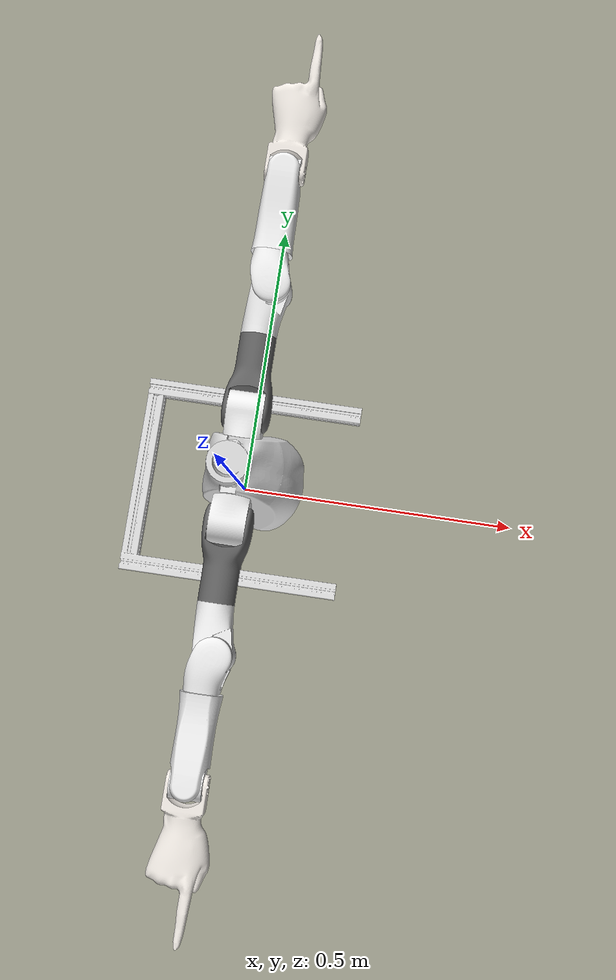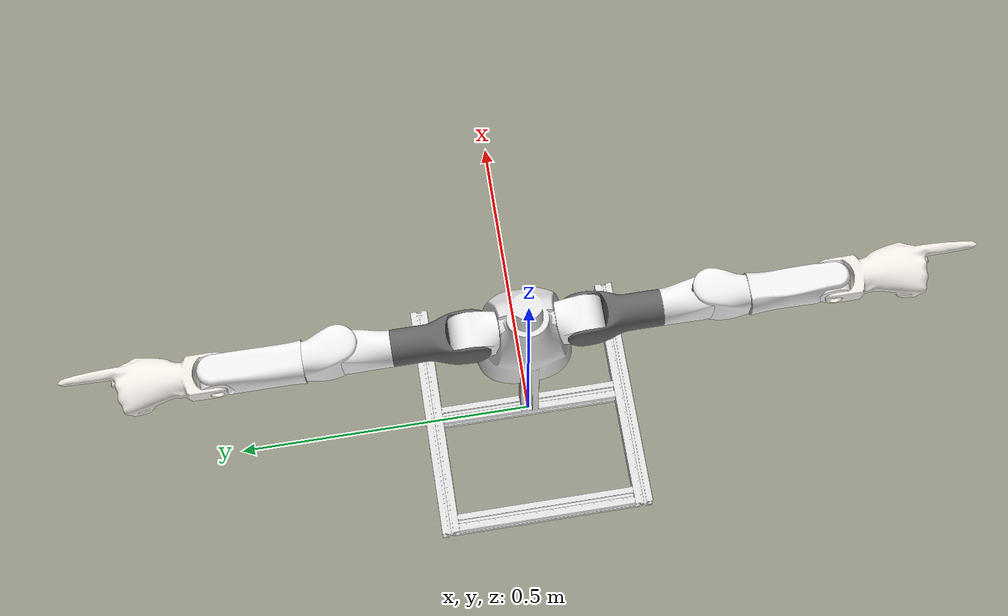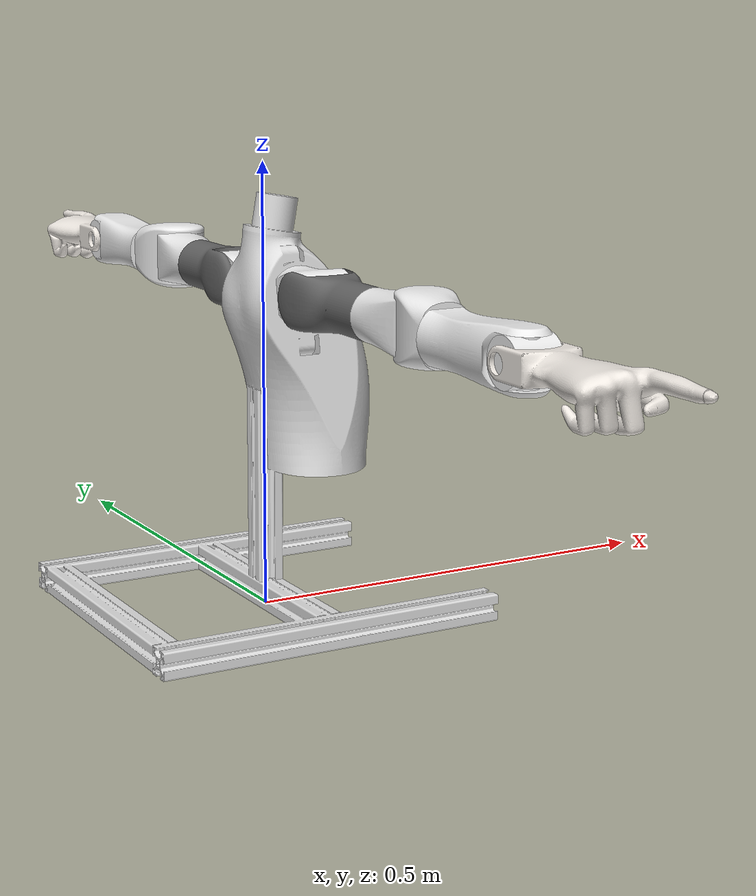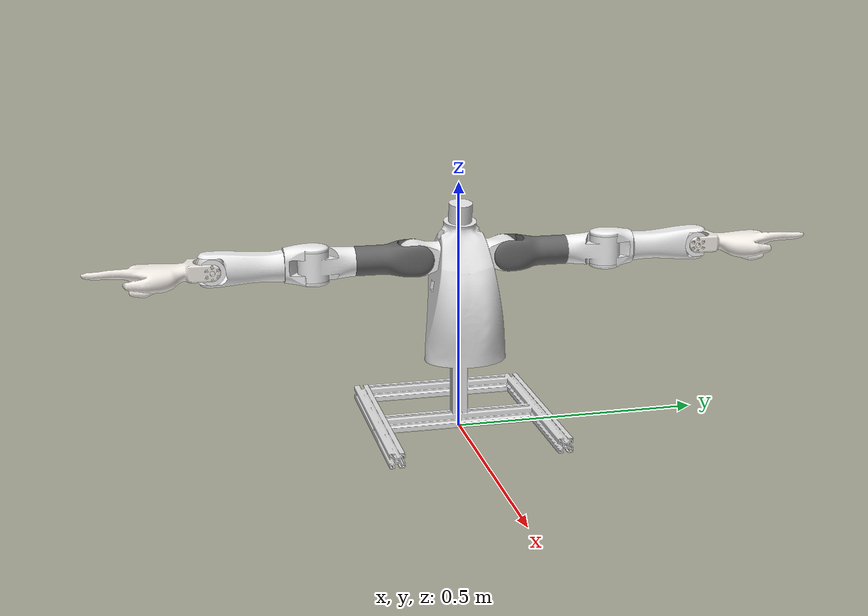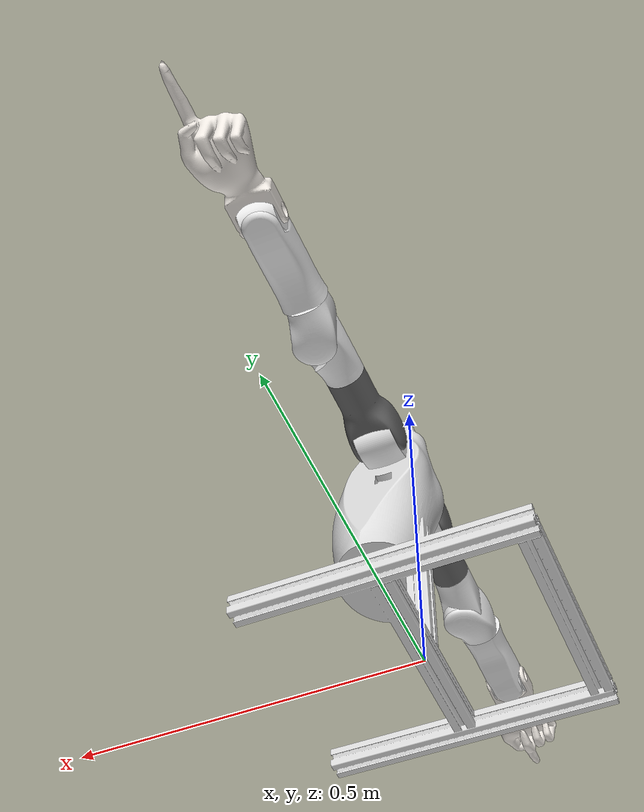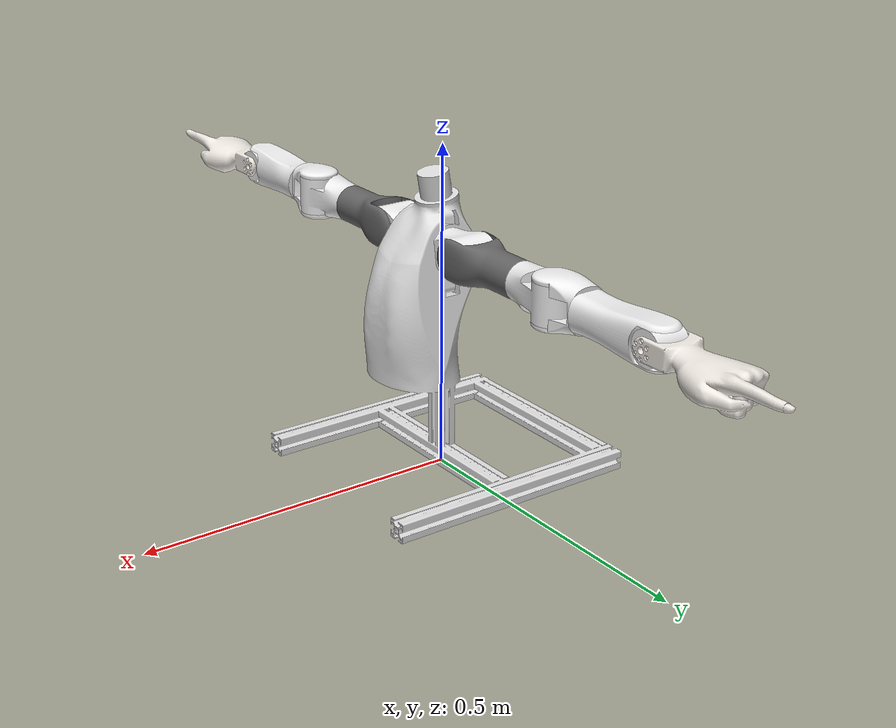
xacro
<?xml version="1.0"?>
<!-- GENERATED by robot_assets from Onshape CAD. Do not edit by hand. Regenerate: robot-assets-generate lite_bimanual -->
<robot xmlns:xacro="http://www.ros.org/wiki/xacro" name="lite_bimanual">
  <xacro:arg name="use_mock_hardware" default="true"/>
  <xacro:arg name="sim_mujoco" default="false"/>
  <xacro:arg name="can_interface_left" default="can0"/>
  <xacro:arg name="can_interface_right" default="can1"/>
  <xacro:arg name="calibration_file" default=""/>

  <xacro:include filename="$(find lite_description)/robots/lite_bimanual/xacro/lite_bimanual.description.xacro"/>
  <xacro:include filename="$(find lite_description)/robots/lite_bimanual/xacro/lite_bimanual.ros2_control.xacro"/>

  <xacro:lite_bimanual_description/>

  <xacro:lite_bimanual_ros2_control
    use_mock_hardware="$(arg use_mock_hardware)"
    sim_mujoco="$(arg sim_mujoco)"
    can_interface_left="$(arg can_interface_left)"
    can_interface_right="$(arg can_interface_right)"
    calibration_file="$(arg calibration_file)"/>
</robot>

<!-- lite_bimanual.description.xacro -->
<!-- GENERATED by lite_description.workflow from Onshape CAD. Do not edit by hand. Regenerate: lite-description-generate lite_bimanual -->
<robot xmlns:xacro="http://www.ros.org/wiki/xacro">
  <xacro:macro name="lite_bimanual_description" params="mesh_root:=package://lite_description/robots/lite_bimanual/meshes/visual">
    <link name="base_link" />
    <joint name="base_link_to_chest" type="fixed">
      <parent link="base_link" />
      <child link="chest" />
      <origin xyz="0 0 0" rpy="0 0 0" />
    </joint>
    <!-- GENERATED by lite_description.workflow from Onshape CAD. Do not edit by hand. Regenerate: lite-description-generate lite_bimanual -->
    <link name="chest">
      <inertial>
        <origin xyz="0.0223995 -9.473e-08 0.218844" rpy="0 0 0" />
        <mass value="5.67528" />
        <inertia ixx="0.11598" ixy="1.83421e-07" ixz="-0.0169371" iyy="0.116403" iyz="6.50745e-07" izz="0.0554604" />
      </inertial>
      <!-- Part chest_parts -->
      <collision>
        <origin xyz="0.04824 5e-05 0.23711" rpy="-0 0 -1.5708" />
        <geometry>
          <sphere radius="0.074" />
        </geometry>
      </collision>
      <collision>
        <origin xyz="0.02322 -3e-05 0.34833" rpy="-0 0 -1.5708" />
        <geometry>
          <sphere radius="0.058" />
        </geometry>
      </collision>
      <visual>
        <origin xyz="0.0223995 -9.473e-08 0.218844" rpy="0 -0 0" />
        <geometry>
          <mesh filename="${mesh_root}/chest_visual.stl" />
        </geometry>
        <material name="chest_parts_material">
          <color rgba="0.877556 0.877556 0.877556 1" />
        </material>
      </visual>
    </link>
    <!-- Link left_shoulder_pitch -->
    <link name="left_shoulder_pitch">
      <inertial>
        <origin xyz="-6.27e-10 -0.00168619 -0.00682299" rpy="0 0 0" />
        <mass value="0.375" />
        <inertia ixx="0.000232695" ixy="7e-12" ixz="2e-12" iyy="0.000233203" iyz="-1.40823e-05" izz="0.000199827" />
      </inertial>
      <!-- Part left_shoulder_pitch_parts -->
      <visual>
        <origin xyz="-6.27e-10 -0.00168619 -0.00682299" rpy="1.39626 0 -0" />
        <geometry>
          <mesh filename="${mesh_root}/left_shoulder_pitch_visual.stl" />
        </geometry>
        <material name="left_shoulder_pitch_parts_material">
          <color rgba="0.933333 0.933333 0.933333 1" />
        </material>
      </visual>
    </link>
    <!-- Link left_shoulder_roll -->
    <link name="left_shoulder_roll">
      <inertial>
        <origin xyz="1.04497e-07 0.0788914 2.17586e-07" rpy="0 0 0" />
        <mass value="0.42" />
        <inertia ixx="0.000535467" ixy="-2.373e-09" ixz="5.049e-09" iyy="0.000208176" iyz="7.18e-09" izz="0.00050471" />
      </inertial>
      <!-- Part left_shoulder_roll_parts -->
      <visual>
        <origin xyz="1.04497e-07 0.0788914 2.17586e-07" rpy="-0 -1.5708 0" />
        <geometry>
          <mesh filename="${mesh_root}/left_shoulder_roll_visual.stl" />
        </geometry>
        <material name="left_shoulder_roll_parts_material">
          <color rgba="0.392063 0.392063 0.392063 1" />
        </material>
      </visual>
    </link>
    <!-- Link left_shoulder_yaw -->
    <link name="left_shoulder_yaw">
      <inertial>
        <origin xyz="0.00503665 -3.0467e-08 -0.0550993" rpy="0 0 0" />
        <mass value="0.43" />
        <inertia ixx="0.000494513" ixy="-1.96e-10" ixz="4.80344e-05" iyy="0.000498656" iyz="9.95e-10" izz="0.000218184" />
      </inertial>
      <!-- Part left_shoulder_yaw_parts -->
      <collision>
        <origin xyz="0 0 0.01418" rpy="0 -0 -1.5708" />
        <geometry>
          <cylinder length="0.18835" radius="0.035" />
        </geometry>
      </collision>
      <visual>
        <origin xyz="0.00503665 -3.0467e-08 -0.0550993" rpy="-1.5708 -0 0" />
        <geometry>
          <mesh filename="${mesh_root}/left_shoulder_yaw_visual.stl" />
        </geometry>
        <material name="left_shoulder_yaw_parts_material">
          <color rgba="0.933333 0.933333 0.933333 1" />
        </material>
      </visual>
    </link>
    <!-- Link left_elbow_pitch -->
    <link name="left_elbow_pitch">
      <inertial>
        <origin xyz="-0.00956573 0.0258355 -2.69877e-07" rpy="0 0 0" />
        <mass value="0.11" />
        <inertia ixx="0.000116342" ixy="7.43616e-06" ixz="-4.1438e-08" iyy="9.70555e-05" iyz="-5.662e-09" izz="7.93924e-05" />
      </inertial>
      <!-- Part left_elbow_pitch_parts -->
      <collision>
        <origin xyz="-0.01 0.06984 -0" rpy="-1.5708 1.5708 0" />
        <geometry>
          <cylinder length="0.13969" radius="0.032" />
        </geometry>
      </collision>
      <visual>
        <origin xyz="-0.00956573 0.0258355 -2.69877e-07" rpy="-0 -0 -0" />
        <geometry>
          <mesh filename="${mesh_root}/left_elbow_pitch_visual.stl" />
        </geometry>
        <material name="left_elbow_pitch_parts_material">
          <color rgba="0.933333 0.933333 0.933333 1" />
        </material>
      </visual>
    </link>
    <!-- Link left_wrist_yaw -->
    <link name="left_wrist_yaw">
      <inertial>
        <origin xyz="2.43113e-07 -2.65973e-05 -0.0592502" rpy="0 0 0" />
        <mass value="0.54" />
        <inertia ixx="0.000850282" ixy="-2.7692e-08" ixz="-3.582e-09" iyy="0.000856128" iyz="-4.1861e-08" izz="0.000282296" />
      </inertial>
      <!-- Part left_wrist_yaw_parts -->
      <visual>
        <origin xyz="2.43113e-07 -2.65973e-05 -0.0592502" rpy="-1.5708 -0 0" />
        <geometry>
          <mesh filename="${mesh_root}/left_wrist_yaw_visual.stl" />
        </geometry>
        <material name="left_wrist_yaw_parts_material">
          <color rgba="0.933333 0.933333 0.933333 1" />
        </material>
      </visual>
    </link>
    <!-- Link left_wrist_roll -->
    <link name="left_wrist_roll">
      <inertial>
        <origin xyz="3.48e-10 1e-12 -2.12e-10" rpy="0 0 0" />
        <mass value="0.25" />
        <inertia ixx="7.92687e-05" ixy="0" ixz="0" iyy="9.19125e-05" iyz="-6.7e-11" izz="9.04076e-05" />
      </inertial>
      <!-- Part left_wrist_roll_parts -->
      <visual>
        <origin xyz="3.48e-10 1e-12 -2.12e-10" rpy="-0 0 0" />
        <geometry>
          <mesh filename="${mesh_root}/left_wrist_roll_visual.stl" />
        </geometry>
        <material name="left_wrist_roll_parts_material">
          <color rgba="0.933333 0.933333 0.933333 1" />
        </material>
      </visual>
    </link>
    <!-- Link left_hand -->
    <link name="left_hand">
      <inertial>
        <origin xyz="0.00440787 0.100718 0.00600969" rpy="0 0 0" />
        <mass value="0.16768" />
        <inertia ixx="0.000457345" ixy="-6.69006e-07" ixz="-6.4849e-07" iyy="9.85782e-05" iyz="-4.41088e-05" izz="0.000408419" />
      </inertial>
      <!-- Part left_hand_parts -->
      <collision>
        <origin xyz="0.00521 0.07591 0.00365" rpy="0 1.47585 1.55003" />
        <geometry>
          <cylinder length="0.10375" radius="0.035" />
        </geometry>
      </collision>
      <collision>
        <origin xyz="-0.00704 0.20041 0.02301" rpy="3.14159 1.54497 -1.58022" />
        <geometry>
          <cylinder length="0.05604" radius="0.005" />
        </geometry>
      </collision>
      <visual>
        <origin xyz="0.00440787 0.100718 0.00600969" rpy="-0 -1.5708 0" />
        <geometry>
          <mesh filename="${mesh_root}/left_hand_visual.stl" />
        </geometry>
        <material name="left_hand_parts_material">
          <color rgba="0.935301 0.913064 0.886694 1" />
        </material>
      </visual>
    </link>
    <!-- Frame left_finger2_tip (dummy link + fixed joint) -->
    <link name="left_finger2_tip">
      <origin xyz="0 0 0" rpy="0 -0 0" />
      <inertial>
        <origin xyz="0 0 0" rpy="0 0 0" />
        <mass value="1e-9" />
        <inertia ixx="0" ixy="0" ixz="0" iyy="0" iyz="0" izz="0" />
      </inertial>
    </link>
    <joint name="left_finger2_tip_frame" type="fixed">
      <origin xyz="-0.007 0.225 0.0225" rpy="-1.5708 -0 1.5708" />
      <parent link="left_hand" />
      <child link="left_finger2_tip" />
      <axis xyz="0 0 0" />
    </joint>
    <!-- Joint from left_wrist_roll to left_hand -->
    <joint name="left_wrist_pitch" type="revolute">
      <origin xyz="0 -0 0" rpy="0 1.5708 0" />
      <parent link="left_wrist_roll" />
      <child link="left_hand" />
      <axis xyz="0 0 1" />
      <limit effort="5.5" velocity="50.27" lower="-0.785398" upper="0.785398" />
      <joint_properties friction="0.1" />
    </joint>
    <!-- Joint from left_wrist_yaw to left_wrist_roll -->
    <joint name="left_wrist_roll" type="revolute">
      <origin xyz="0 0 -0.135" rpy="-1.5708 -0 0" />
      <parent link="left_wrist_yaw" />
      <child link="left_wrist_roll" />
      <axis xyz="0 0 1" />
      <limit effort="5.5" velocity="50.27" lower="-0.698132" upper="0.698132" />
      <joint_properties friction="0.1" />
    </joint>
    <!-- Joint from left_elbow_pitch to left_wrist_yaw -->
    <joint name="left_wrist_yaw" type="revolute">
      <origin xyz="-0.01 0.055 0" rpy="1.5708 -0 -0" />
      <parent link="left_elbow_pitch" />
      <child link="left_wrist_yaw" />
      <axis xyz="0 0 1" />
      <limit effort="5.5" velocity="50.27" lower="-2.0944" upper="2.0944" />
      <joint_properties friction="0.1" />
    </joint>
    <!-- Joint from left_shoulder_yaw to left_elbow_pitch -->
    <joint name="left_elbow_pitch" type="revolute">
      <origin xyz="0.01 -0 -0.08" rpy="-1.5708 -0 -0" />
      <parent link="left_shoulder_yaw" />
      <child link="left_elbow_pitch" />
      <axis xyz="0 0 1" />
      <limit effort="14" velocity="32.99" lower="-2.35619" upper="0" />
      <joint_properties friction="0.1" />
    </joint>
    <!-- Joint from left_shoulder_roll to left_shoulder_yaw -->
    <joint name="left_shoulder_yaw" type="revolute">
      <origin xyz="0 0.12 -0" rpy="1.5708 -1.5708 0" />
      <parent link="left_shoulder_roll" />
      <child link="left_shoulder_yaw" />
      <axis xyz="0 0 1" />
      <limit effort="14" velocity="32.99" lower="-2.0944" upper="2.0944" />
      <joint_properties friction="0.1" />
    </joint>
    <!-- Joint from left_shoulder_pitch to left_shoulder_roll -->
    <joint name="left_shoulder_roll" type="revolute">
      <origin xyz="0 -0 0" rpy="1.5708 0.174533 1.5708" />
      <parent link="left_shoulder_pitch" />
      <child link="left_shoulder_roll" />
      <axis xyz="0 0 1" />
      <limit effort="14" velocity="32.99" lower="-1.5708" upper="1.91986" />
      <joint_properties friction="0.1" />
    </joint>
    <!-- Joint from chest to left_shoulder_pitch -->
    <joint name="left_shoulder_pitch" type="revolute">
      <origin xyz="0.02 0.09 0.36" rpy="-1.39626 0 0" />
      <parent link="chest" />
      <child link="left_shoulder_pitch" />
      <axis xyz="0 0 1" />
      <limit effort="17" velocity="42.94" lower="-3.14159" upper="0.785398" />
      <joint_properties friction="0.1" />
    </joint>
    <!-- Link right_shoulder_pitch -->
    <link name="right_shoulder_pitch">
      <inertial>
        <origin xyz="6.27e-10 -0.00168619 0.00682299" rpy="0 0 0" />
        <mass value="0.375" />
        <inertia ixx="0.000232695" ixy="-7e-12" ixz="2e-12" iyy="0.000233203" iyz="1.40823e-05" izz="0.000199827" />
      </inertial>
      <!-- Part right_shoulder_pitch_parts -->
      <visual>
        <origin xyz="6.27e-10 -0.00168619 0.00682299" rpy="1.74533 0 0" />
        <geometry>
          <mesh filename="${mesh_root}/right_shoulder_pitch_visual.stl" />
        </geometry>
        <material name="right_shoulder_pitch_parts_material">
          <color rgba="0.933333 0.933333 0.933333 1" />
        </material>
      </visual>
    </link>
    <!-- Link right_shoulder_roll -->
    <link name="right_shoulder_roll">
      <inertial>
        <origin xyz="-1.01172e-07 0.0788914 2.6114e-08" rpy="0 0 0" />
        <mass value="0.42" />
        <inertia ixx="0.000535466" ixy="2.667e-09" ixz="-3.953e-09" iyy="0.000208176" iyz="-1.3e-11" izz="0.00050471" />
      </inertial>
      <!-- Part right_shoulder_roll_parts -->
      <visual>
        <origin xyz="-1.01172e-07 0.0788914 2.6114e-08" rpy="3.14159 -1.5708 0" />
        <geometry>
          <mesh filename="${mesh_root}/right_shoulder_roll_visual.stl" />
        </geometry>
        <material name="right_shoulder_roll_parts_material">
          <color rgba="0.392063 0.392063 0.392063 1" />
        </material>
      </visual>
    </link>
    <!-- Link right_shoulder_yaw -->
    <link name="right_shoulder_yaw">
      <inertial>
        <origin xyz="0.00503646 -5.8719e-08 -0.0550993" rpy="0 0 0" />
        <mass value="0.43" />
        <inertia ixx="0.000494516" ixy="1.11e-10" ixz="4.80353e-05" iyy="0.000498658" iyz="1.121e-09" izz="0.000218183" />
      </inertial>
      <!-- Part right_shoulder_yaw_parts -->
      <collision>
        <origin xyz="0 0 0.01418" rpy="-0 0 1.5708" />
        <geometry>
          <cylinder length="0.18835" radius="0.035" />
        </geometry>
      </collision>
      <visual>
        <origin xyz="0.00503646 -5.8719e-08 -0.0550993" rpy="1.5708 0 0" />
        <geometry>
          <mesh filename="${mesh_root}/right_shoulder_yaw_visual.stl" />
        </geometry>
        <material name="right_shoulder_yaw_parts_material">
          <color rgba="0.933333 0.933333 0.933333 1" />
        </material>
      </visual>
    </link>
    <!-- Link right_elbow_pitch -->
    <link name="right_elbow_pitch">
      <inertial>
        <origin xyz="-0.0095654 0.0258358 1.46053e-06" rpy="0 0 0" />
        <mass value="0.11" />
        <inertia ixx="0.000116343" ixy="7.43678e-06" ixz="3.8036e-08" iyy="9.70569e-05" iyz="6.815e-09" izz="7.93932e-05" />
      </inertial>
      <!-- Part right_elbow_pitch_parts -->
      <collision>
        <origin xyz="-0.01 0.06984 -0" rpy="-1.5708 -1.5708 0" />
        <geometry>
          <cylinder length="0.13969" radius="0.032" />
        </geometry>
      </collision>
      <visual>
        <origin xyz="-0.0095654 0.0258358 1.46053e-06" rpy="3.14159 -0 0" />
        <geometry>
          <mesh filename="${mesh_root}/right_elbow_pitch_visual.stl" />
        </geometry>
        <material name="right_elbow_pitch_parts_material">
          <color rgba="0.933333 0.933333 0.933333 1" />
        </material>
      </visual>
    </link>
    <!-- Link right_wrist_yaw -->
    <link name="right_wrist_yaw">
      <inertial>
        <origin xyz="1.9927e-07 2.65766e-05 -0.0592501" rpy="0 0 0" />
        <mass value="0.54" />
        <inertia ixx="0.000850282" ixy="2.867e-08" ixz="-3.815e-09" iyy="0.000856128" iyz="4.2803e-08" izz="0.000282295" />
      </inertial>
      <!-- Part right_wrist_yaw_parts -->
      <visual>
        <origin xyz="1.9927e-07 2.65766e-05 -0.0592501" rpy="1.5708 0 0" />
        <geometry>
          <mesh filename="${mesh_root}/right_wrist_yaw_visual.stl" />
        </geometry>
        <material name="right_wrist_yaw_parts_material">
          <color rgba="0.933333 0.933333 0.933333 1" />
        </material>
      </visual>
    </link>
    <!-- Link right_wrist_roll -->
    <link name="right_wrist_roll">
      <inertial>
        <origin xyz="4.084e-09 -2e-12 -2.02e-10" rpy="0 0 0" />
        <mass value="0.25" />
        <inertia ixx="7.92688e-05" ixy="-0" ixz="0" iyy="9.19094e-05" iyz="2.493e-09" izz="9.04084e-05" />
      </inertial>
      <!-- Part right_wrist_roll_parts -->
      <visual>
        <origin xyz="4.084e-09 -2e-12 -2.02e-10" rpy="3.14159 -0 0" />
        <geometry>
          <mesh filename="${mesh_root}/right_wrist_roll_visual.stl" />
        </geometry>
        <material name="right_wrist_roll_parts_material">
          <color rgba="0.933333 0.933333 0.933333 1" />
        </material>
      </visual>
    </link>
    <!-- Link right_hand -->
    <link name="right_hand">
      <inertial>
        <origin xyz="-0.00440785 0.100718 0.00600972" rpy="0 0 0" />
        <mass value="0.16768" />
        <inertia ixx="0.000457345" ixy="6.69179e-07" ixz="6.48172e-07" iyy="9.85785e-05" iyz="-4.41089e-05" izz="0.000408418" />
      </inertial>
      <!-- Part right_hand_parts -->
      <collision>
        <origin xyz="-0.00521 0.07591 0.00365" rpy="-0 1.47585 1.59157" />
        <geometry>
          <cylinder length="0.10375" radius="0.035" />
        </geometry>
      </collision>
      <collision>
        <origin xyz="0.00704 0.20041 0.02301" rpy="-3.14159 1.54497 -1.56137" />
        <geometry>
          <cylinder length="0.05604" radius="0.005" />
        </geometry>
      </collision>
      <visual>
        <origin xyz="-0.00440785 0.100718 0.00600972" rpy="3.14159 -1.5708 0" />
        <geometry>
          <mesh filename="${mesh_root}/right_hand_visual.stl" />
        </geometry>
        <material name="right_hand_parts_material">
          <color rgba="0.935301 0.913064 0.886694 1" />
        </material>
      </visual>
    </link>
    <!-- Frame right_finger2_tip (dummy link + fixed joint) -->
    <link name="right_finger2_tip">
      <origin xyz="0 0 0" rpy="0 -0 0" />
      <inertial>
        <origin xyz="0 0 0" rpy="0 0 0" />
        <mass value="1e-9" />
        <inertia ixx="0" ixy="0" ixz="0" iyy="0" iyz="0" izz="0" />
      </inertial>
    </link>
    <joint name="right_finger2_tip_frame" type="fixed">
      <origin xyz="0.007 0.225 0.0225" rpy="1.5708 0 1.5708" />
      <parent link="right_hand" />
      <child link="right_finger2_tip" />
      <axis xyz="0 0 0" />
    </joint>
    <!-- Joint from right_wrist_roll to right_hand -->
    <joint name="right_wrist_pitch" type="revolute">
      <origin xyz="0 0 -0" rpy="-0 1.5708 0" />
      <parent link="right_wrist_roll" />
      <child link="right_hand" />
      <axis xyz="0 0 1" />
      <limit effort="5.5" velocity="50.27" lower="-0.785398" upper="0.785398" />
      <joint_properties friction="0.1" />
    </joint>
    <!-- Joint from right_wrist_yaw to right_wrist_roll -->
    <joint name="right_wrist_roll" type="revolute">
      <origin xyz="0 0 -0.135" rpy="-1.5708 0 0" />
      <parent link="right_wrist_yaw" />
      <child link="right_wrist_roll" />
      <axis xyz="0 0 1" />
      <limit effort="5.5" velocity="50.27" lower="-0.698132" upper="0.698132" />
      <joint_properties friction="0.1" />
    </joint>
    <!-- Joint from right_elbow_pitch to right_wrist_yaw -->
    <joint name="right_wrist_yaw" type="revolute">
      <origin xyz="-0.01 0.055 0" rpy="1.5708 -0 -0" />
      <parent link="right_elbow_pitch" />
      <child link="right_wrist_yaw" />
      <axis xyz="0 0 1" />
      <limit effort="5.5" velocity="50.27" lower="-2.0944" upper="2.0944" />
      <joint_properties friction="0.1" />
    </joint>
    <!-- Joint from right_shoulder_yaw to right_elbow_pitch -->
    <joint name="right_elbow_pitch" type="revolute">
      <origin xyz="0.01 -0 -0.08" rpy="-1.5708 0 -0" />
      <parent link="right_shoulder_yaw" />
      <child link="right_elbow_pitch" />
      <axis xyz="0 0 1" />
      <limit effort="14" velocity="32.99" lower="-2.35619" upper="0" />
      <joint_properties friction="0.1" />
    </joint>
    <!-- Joint from right_shoulder_roll to right_shoulder_yaw -->
    <joint name="right_shoulder_yaw" type="revolute">
      <origin xyz="-0 0.12 0" rpy="1.5708 -1.5708 0" />
      <parent link="right_shoulder_roll" />
      <child link="right_shoulder_yaw" />
      <axis xyz="0 0 1" />
      <limit effort="14" velocity="32.99" lower="-2.0944" upper="2.0944" />
      <joint_properties friction="0.1" />
    </joint>
    <!-- Joint from right_shoulder_pitch to right_shoulder_roll -->
    <joint name="right_shoulder_roll" type="revolute">
      <origin xyz="0 -0 -0" rpy="-1.5708 0.174533 -1.5708" />
      <parent link="right_shoulder_pitch" />
      <child link="right_shoulder_roll" />
      <axis xyz="0 0 1" />
      <limit effort="14" velocity="32.99" lower="-1.91986" upper="1.5708" />
      <joint_properties friction="0.1" />
    </joint>
    <!-- Joint from chest to right_shoulder_pitch -->
    <joint name="right_shoulder_pitch" type="revolute">
      <origin xyz="0.02 -0.09 0.36" rpy="-1.74533 -0 0" />
      <parent link="chest" />
      <child link="right_shoulder_pitch" />
      <axis xyz="0 0 1" />
      <limit effort="17" velocity="42.94" lower="-3.14159" upper="0.785398" />
      <joint_properties friction="0.1" />
    </joint>
  </xacro:macro>
</robot>
